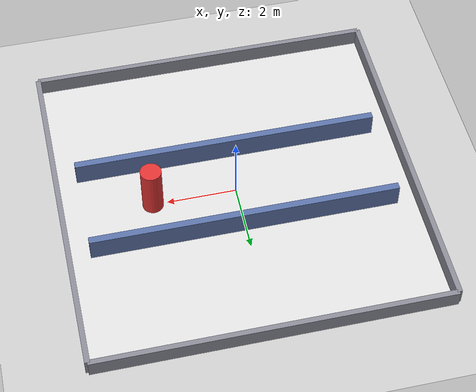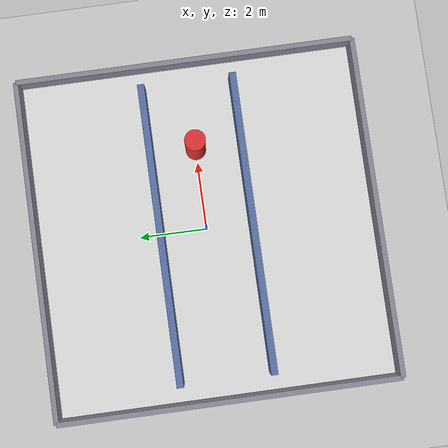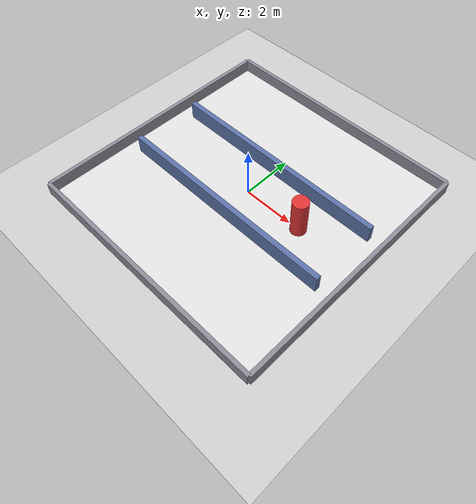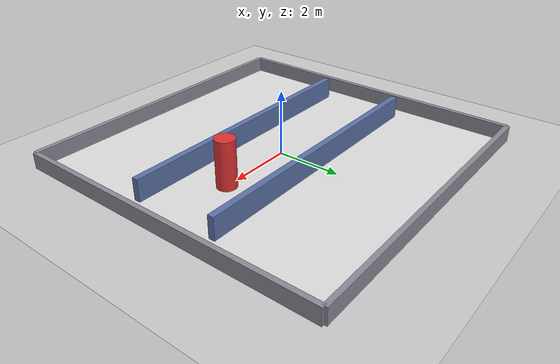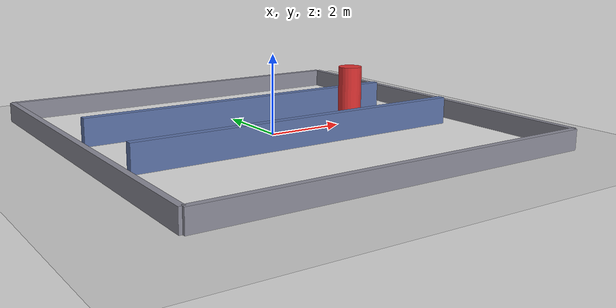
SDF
<?xml version="1.0"?>
<sdf version="1.6">
  <world name="narrow_corridor">
    <gravity>0 0 -9.8</gravity>
    <magnetic_field>6e-06 2.3e-05 -4.2e-05</magnetic_field>
    <atmosphere type="adiabatic"/>

    <physics name="default_physics" type="ode">
      <max_step_size>0.001</max_step_size>
      <real_time_factor>1.0</real_time_factor>
      <real_time_update_rate>1000</real_time_update_rate>
    </physics>

    <scene>
      <ambient>0.45 0.45 0.45 1.0</ambient>
      <background>0.75 0.82 0.88 1.0</background>
      <shadows>false</shadows>
    </scene>

    <include>
      <uri>model://ground_plane</uri>
    </include>

    <include>
      <uri>model://sun</uri>
    </include>

    <model name="arena_floor">
      <static>true</static>
      <pose>0 0 0 0 0 0</pose>
      <link name="floor_link">
        <collision name="floor_collision">
          <geometry>
            <box>
              <size>10 10 0.02</size>
            </box>
          </geometry>
        </collision>
        <visual name="floor_visual">
          <geometry>
            <box>
              <size>10 10 0.02</size>
            </box>
          </geometry>
          <material>
            <ambient>0.88 0.88 0.88 1.0</ambient>
            <diffuse>0.88 0.88 0.88 1.0</diffuse>
          </material>
        </visual>
      </link>
    </model>

    <model name="north_wall">
      <static>true</static>
      <pose>0 5 0.25 0 0 0</pose>
      <link name="wall_link">
        <collision name="collision">
          <geometry>
            <box>
              <size>10 0.15 0.5</size>
            </box>
          </geometry>
        </collision>
        <visual name="visual">
          <geometry>
            <box>
              <size>10 0.15 0.5</size>
            </box>
          </geometry>
          <material>
            <ambient>0.55 0.55 0.60 1.0</ambient>
            <diffuse>0.55 0.55 0.60 1.0</diffuse>
          </material>
        </visual>
      </link>
    </model>

    <model name="south_wall">
      <static>true</static>
      <pose>0 -5 0.25 0 0 0</pose>
      <link name="wall_link">
        <collision name="collision">
          <geometry>
            <box>
              <size>10 0.15 0.5</size>
            </box>
          </geometry>
        </collision>
        <visual name="visual">
          <geometry>
            <box>
              <size>10 0.15 0.5</size>
            </box>
          </geometry>
          <material>
            <ambient>0.55 0.55 0.60 1.0</ambient>
            <diffuse>0.55 0.55 0.60 1.0</diffuse>
          </material>
        </visual>
      </link>
    </model>

    <model name="east_wall">
      <static>true</static>
      <pose>5 0 0.25 0 0 0</pose>
      <link name="wall_link">
        <collision name="collision">
          <geometry>
            <box>
              <size>0.15 10 0.5</size>
            </box>
          </geometry>
        </collision>
        <visual name="visual">
          <geometry>
            <box>
              <size>0.15 10 0.5</size>
            </box>
          </geometry>
          <material>
            <ambient>0.55 0.55 0.60 1.0</ambient>
            <diffuse>0.55 0.55 0.60 1.0</diffuse>
          </material>
        </visual>
      </link>
    </model>

    <model name="west_wall">
      <static>true</static>
      <pose>-5 0 0.25 0 0 0</pose>
      <link name="wall_link">
        <collision name="collision">
          <geometry>
            <box>
              <size>0.15 10 0.5</size>
            </box>
          </geometry>
        </collision>
        <visual name="visual">
          <geometry>
            <box>
              <size>0.15 10 0.5</size>
            </box>
          </geometry>
          <material>
            <ambient>0.55 0.55 0.60 1.0</ambient>
            <diffuse>0.55 0.55 0.60 1.0</diffuse>
          </material>
        </visual>
      </link>
    </model>

    <model name="corridor_wall_top">
      <static>true</static>
      <pose>0 1.35 0.35 0 0 0</pose>
      <link name="wall_link">
        <collision name="collision">
          <geometry>
            <box>
              <size>8.8 0.2 0.7</size>
            </box>
          </geometry>
        </collision>
        <visual name="visual">
          <geometry>
            <box>
              <size>8.8 0.2 0.7</size>
            </box>
          </geometry>
          <material>
            <ambient>0.36 0.45 0.66 1.0</ambient>
            <diffuse>0.36 0.45 0.66 1.0</diffuse>
          </material>
        </visual>
      </link>
    </model>

    <model name="corridor_wall_bottom">
      <static>true</static>
      <pose>0 -1.35 0.35 0 0 0</pose>
      <link name="wall_link">
        <collision name="collision">
          <geometry>
            <box>
              <size>8.8 0.2 0.7</size>
            </box>
          </geometry>
        </collision>
        <visual name="visual">
          <geometry>
            <box>
              <size>8.8 0.2 0.7</size>
            </box>
          </geometry>
          <material>
            <ambient>0.36 0.45 0.66 1.0</ambient>
            <diffuse>0.36 0.45 0.66 1.0</diffuse>
          </material>
        </visual>
      </link>
    </model>

    <model name="obs1">
      <pose>2.4 0.0 0.75 0 0 0</pose>
      <link name="obs1_link">
        <gravity>true</gravity>
        <kinematic>true</kinematic>
        <self_collide>false</self_collide>
        <inertial>
          <mass>12.0</mass>
          <inertia>
            <ixx>2.52</ixx>
            <ixy>0.0</ixy>
            <ixz>0.0</ixz>
            <iyy>2.52</iyy>
            <iyz>0.0</iyz>
            <izz>0.54</izz>
          </inertia>
        </inertial>
        <collision name="collision">
          <geometry>
            <cylinder>
              <radius>0.3</radius>
              <length>1.5</length>
            </cylinder>
          </geometry>
          <surface>
            <friction>
              <ode>
                <mu>10.0</mu>
                <mu2>10.0</mu2>
              </ode>
            </friction>
          </surface>
        </collision>
        <visual name="visual">
          <geometry>
            <cylinder>
              <radius>0.3</radius>
              <length>1.5</length>
            </cylinder>
          </geometry>
          <material>
            <ambient>0.88 0.20 0.20 1.0</ambient>
            <diffuse>0.88 0.20 0.20 1.0</diffuse>
          </material>
        </visual>
      </link>
      <plugin name="obs1_planar_move" filename="libgazebo_ros_planar_move.so">
        <ros>
          <namespace>/obs1</namespace>
          <remapping>cmd_vel:=cmd_vel</remapping>
          <remapping>odom:=odom</remapping>
        </ros>
        <update_rate>100</update_rate>
        <publish_rate>30</publish_rate>
        <publish_odom>false</publish_odom>
        <publish_odom_tf>false</publish_odom_tf>
        <odometry_frame>obs1_odom</odometry_frame>
        <robot_base_frame>obs1_link</robot_base_frame>
      </plugin>
    </model>
  </world>
</sdf>
